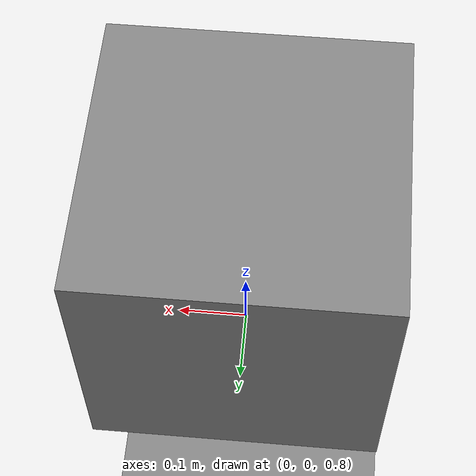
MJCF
<mujoco model="parent-child">
  <option gravity="0 0 -9.81" timestep="0.002"/>
  <worldbody>
    <geom name="ground" type="plane" size="5 5 0.1"/>
    <body name="parent_body" pos="0 0 1">
      <freejoint name="parent_free"/>
      <geom name="parent_geom" type="box" size="0.2 0.2 0.2" mass="1.0"/>
      <body name="child_body" pos="0 0 0">
        <joint name="child_hinge" type="hinge" axis="0 1 0"/>
        <geom name="child_geom" type="box" size="0.15 0.15 0.15" mass="0.5"/>
      </body>
    </body>
  </worldbody>
</mujoco>
